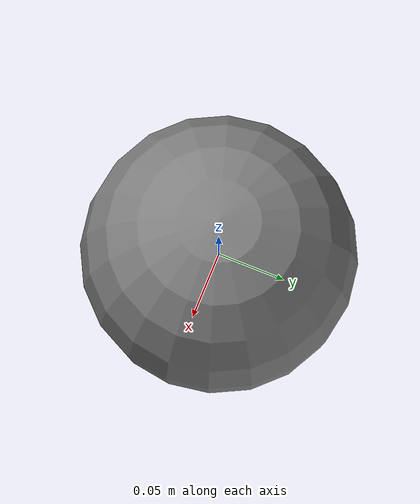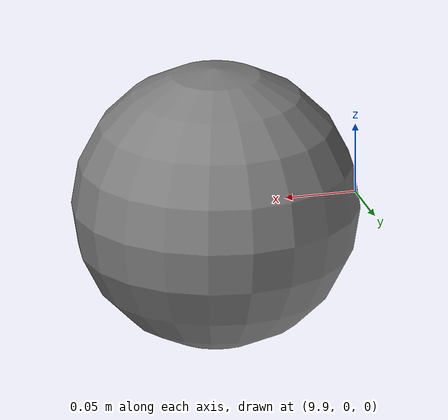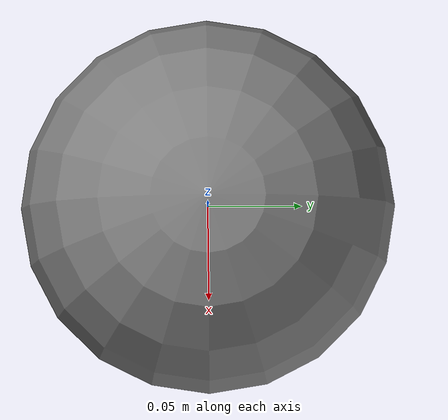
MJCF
<mujoco model="t17">
            <worldbody>
                <body name="b1" pos="0 0 0">
                    <geom name="g1" type="sphere" size="0.1" pos="0 0 0"/>
                </body>
                <body name="b2" pos="10 0 0">
                    <geom name="g2" type="sphere" size="0.1" pos="0 0 0"/>
                </body>
            </worldbody>
            <sensor>
                <distance name="d" geom1="g1" geom2="g2" cutoff="1"/>
                <normal name="n" geom1="g1" geom2="g2" cutoff="1"/>
                <fromto name="ft" geom1="g1" geom2="g2" cutoff="1"/>
            </sensor>
        </mujoco>
